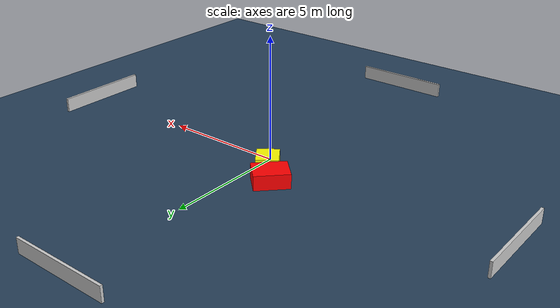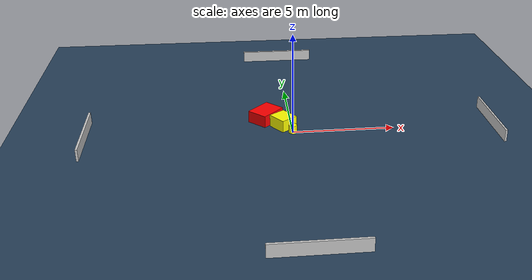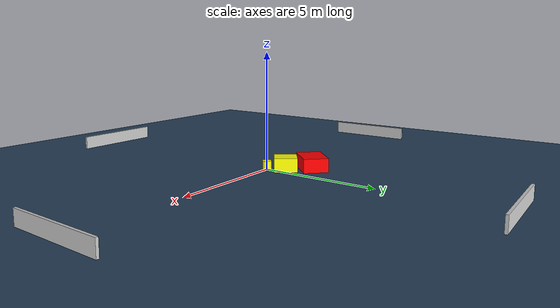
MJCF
<?xml version="1.0" ?>
<mujoco model="generated_environment">
  <option timestep="0.01" integrator="RK4" cone="elliptic"/>
  <default>
    <geom density="1"/>
  </default>
  <asset>
    <texture builtin="gradient" height="3072" name="skybox" rgb1="0.3 0.5 0.7" rgb2="0 0 0" type="skybox" width="512"/>
    <texture builtin="checker" height="300" name="groundplane" rgb1="0.2 0.3 0.4" rgb2="0.1 0.2 0.3" type="2d" width="300"/>
    <material name="groundplane" reflectance="0.2" texrepeat="5 5" texture="groundplane"/>
  </asset>
  <worldbody>
    <light dir="0 0 -1" directional="true" pos="0 0 1.5"/>
    <geom condim="3" friction="0.5 0.005 0.001" material="groundplane" name="floor" pos="0 0 0" size="0 0 0.05" type="plane"/>
    <body name="walls">
      <geom name="wall_1" condim="4" pos="-10.0 0.0 0.3" rgba="0.800000011920929 0.800000011920929 0.800000011920929 1.0" size="0.05 2.0 0.3" type="box"/>
      <geom name="wall_2" condim="4" pos="10.0 0.0 0.3" rgba="0.800000011920929 0.800000011920929 0.800000011920929 1.0" size="0.05 2.0 0.3" type="box"/>
      <geom name="wall_3" condim="4" pos="0.0 -10.0 0.3" rgba="0.800000011920929 0.800000011920929 0.800000011920929 1.0" size="2.0 0.05 0.3" type="box"/>
      <geom name="wall_4" condim="4" pos="0.0 10.0 0.3" rgba="0.800000011920929 0.800000011920929 0.800000011920929 1.0" size="2.0 0.05 0.3" type="box"/>
    </body>
    <body name="robot">
      <joint name="joint_x" type="slide" pos="0 0 0" axis="1 0 0"/>
      <joint name="joint_y" type="slide" pos="0 0 0" axis="0 1 0"/>
      <geom name="robot" type="cylinder" pos="0.0 0.0 0.2" size="0.2 0.2 0.0" mass="5.0" friction="1.0 0.005 0.0001" condim="4" rgba="1.0 1.0 0.0 1.0"/>
    </body>
    <body name="obstacle_1_movable">
      <geom name="obstacle_1_movable" condim="4" pos="-0.41523475142834754 0.6764469587303065 0.3" euler="0 0 216.04714779160736" friction="0.0 0.005 0.001" rgba="1.0 1.0 0.0 1.0" size="0.4484054483336324 0.4931932046246374 0.3" type="box" mass="0.1"/>
      <joint type="free"/>
    </body>
    <body name="obstacle_2_static">
      <geom name="obstacle_2_static" condim="4" pos="-1.2259861686382216 1.5073927153870765 0.3" euler="0 0 135.8534217857655" friction="0.0 0.005 0.001" rgba="1.0 0.0 0.0 1.0" size="0.5398199384810892 0.6959870663795893 0.3" type="box"/>
    </body>
  </worldbody>
  <actuator>
    <motor name="actuator_x" joint="joint_x" gear="1" ctrlrange="-1 1"/>
    <motor name="actuator_y" joint="joint_y" gear="1" ctrlrange="-1 1"/>
  </actuator>
</mujoco>
